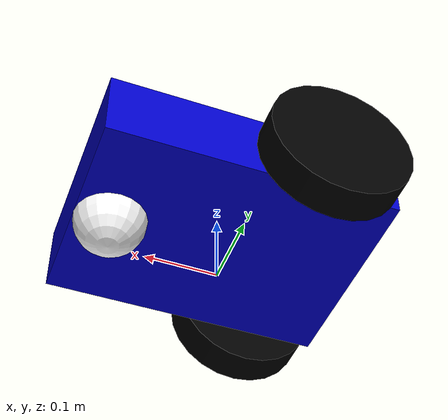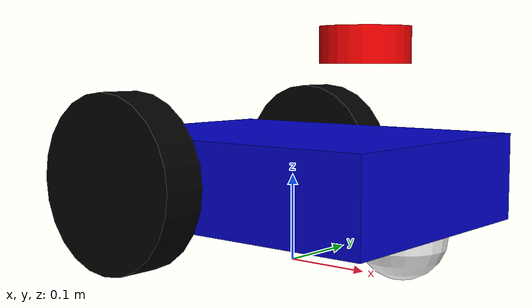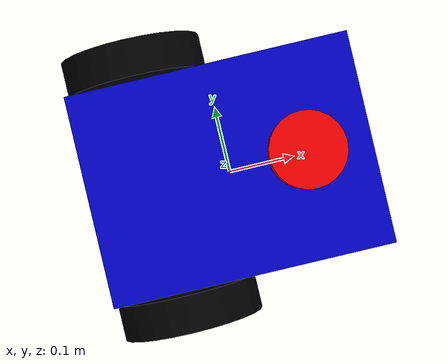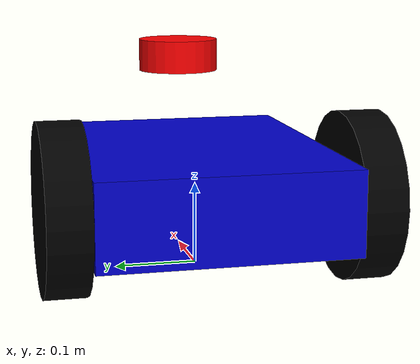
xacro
<?xml version="1.0"?>
<robot name="my_mobile_robot" xmlns:xacro="http://www.ros.org/wiki/xacro">

  <material name="blue"><color rgba="0 0 0.8 1"/></material>
  <material name="black"><color rgba="0 0 0 1"/></material>
  <material name="white"><color rgba="1 1 1 1"/></material>
  <material name="red"><color rgba="1 0 0 1"/></material> <link name="base_footprint"/>

  <joint name="base_joint" type="fixed">
    <parent link="base_footprint"/>
    <child link="base_link"/>
    <origin xyz="0 0 0.1"/>
  </joint>

  <link name="base_link">
    <visual>
      <geometry><box size="0.4 0.3 0.1"/></geometry>
      <material name="blue"/>
    </visual>
    <collision>
      <geometry><box size="0.4 0.3 0.1"/></geometry>
    </collision>
    <inertial>
      <mass value="5.0"/>
      <inertia ixx="0.1" ixy="0" ixz="0" iyy="0.1" iyz="0" izz="0.1"/>
    </inertial>
  </link>

  <link name="left_wheel">
    <visual>
      <geometry><cylinder radius="0.1" length="0.05"/></geometry>
      <material name="black"/>
    </visual>
    <collision>
      <geometry><cylinder radius="0.1" length="0.05"/></geometry>
    </collision>
    <inertial>
      <mass value="1.0"/>
      <inertia ixx="0.1" ixy="0" ixz="0" iyy="0.1" iyz="0" izz="0.1"/>
    </inertial>
  </link>

  <joint name="left_wheel_joint" type="continuous">
    <parent link="base_link"/>
    <child link="left_wheel"/>
    <origin xyz="-0.1 0.175 0" rpy="-1.5708 0 0"/>
    <axis xyz="0 0 1"/>
  </joint>

  <link name="right_wheel">
    <visual>
      <geometry><cylinder radius="0.1" length="0.05"/></geometry>
      <material name="black"/>
    </visual>
    <collision>
      <geometry><cylinder radius="0.1" length="0.05"/></geometry>
    </collision>
    <inertial>
      <mass value="1.0"/>
      <inertia ixx="0.1" ixy="0" ixz="0" iyy="0.1" iyz="0" izz="0.1"/>
    </inertial>
  </link>

  <joint name="right_wheel_joint" type="continuous">
    <parent link="base_link"/>
    <child link="right_wheel"/>
    <origin xyz="-0.1 -0.175 0" rpy="-1.5708 0 0"/>
    <axis xyz="0 0 1"/>
  </joint>

  <link name="caster_wheel">
    <visual>
      <geometry><sphere radius="0.05"/></geometry>
      <material name="white"/>
    </visual>
    <collision>
      <geometry><sphere radius="0.05"/></geometry>
    </collision>
    <inertial>
      <mass value="0.5"/>
      <inertia ixx="0.01" ixy="0" ixz="0" iyy="0.01" iyz="0" izz="0.01"/>
    </inertial>
  </link>

  <joint name="caster_joint" type="fixed">
    <parent link="base_link"/>
    <child link="caster_wheel"/>
    <origin xyz="0.15 0 -0.05"/>
  </joint>

  <link name="lidar_link">
    <visual>
      <geometry><cylinder radius="0.05" length="0.04"/></geometry>
      <material name="red"/>
    </visual>
    <collision>
      <geometry><cylinder radius="0.05" length="0.04"/></geometry>
    </collision>
    <inertial>
      <mass value="0.1"/>
      <inertia ixx="0.001" ixy="0" ixz="0" iyy="0.001" iyz="0" izz="0.001"/>
    </inertial>
  </link>

  <joint name="lidar_joint" type="fixed">
    <parent link="base_link"/>
    <child link="lidar_link"/>
    <origin xyz="0.1 0 0.15"/> </joint>

  <gazebo reference="caster_wheel">
    <material>Gazebo/White</material>
    <mu1>0.001</mu1>
    <mu2>0.001</mu2>
  </gazebo>

  <gazebo reference="left_wheel">
    <material>Gazebo/Black</material>
    <mu1>10.0</mu1>
    <mu2>10.0</mu2>
  </gazebo>

  <gazebo reference="right_wheel">
    <material>Gazebo/Black</material>
    <mu1>10.0</mu1>
    <mu2>10.0</mu2>
  </gazebo>

  <gazebo reference="base_link">
    <material>Gazebo/Blue</material>
  </gazebo>

  <gazebo reference="lidar_link">
    <material>Gazebo/Red</material>
  </gazebo>

  <gazebo>
    <plugin name="diff_drive" filename="libgazebo_ros_diff_drive.so">
<max_wheel_torque>20</max_wheel_torque>
      <max_wheel_acceleration>1.0</max_wheel_acceleration>

      <left_joint>left_wheel_joint</left_joint>
      <right_joint>right_wheel_joint</right_joint>
      <wheel_separation>0.35</wheel_separation>
      <wheel_diameter>0.2</wheel_diameter>
      <command_topic>cmd_vel</command_topic>
      <publish_odom>true</publish_odom>
      <publish_odom_tf>true</publish_odom_tf>
      <publish_wheel_tf>true</publish_wheel_tf>
      <robot_base_frame>base_footprint</robot_base_frame>
    </plugin>

    <plugin name="gazebo_ros_joint_state_publisher" filename="libgazebo_ros_joint_state_publisher.so">
      <update_rate>50</update_rate>
      <joint_name>left_wheel_joint</joint_name>
      <joint_name>right_wheel_joint</joint_name>
    </plugin>
  </gazebo>

  <gazebo reference="lidar_link">
    <sensor name="lidar" type="ray">
      <always_on>true</always_on>
      <visualize>true</visualize> <update_rate>10</update_rate>
      <ray>
        <scan>
          <horizontal>
            <samples>360</samples>
            <resolution>1.000000</resolution>
            <min_angle>0.000000</min_angle>
            <max_angle>6.280000</max_angle>
          </horizontal>
        </scan>
        <range>
          <min>0.120000</min>
          <max>3.5</max>
          <resolution>0.015000</resolution>
        </range>
        <noise>
          <type>gaussian</type>
          <mean>0.0</mean>
          <stddev>0.01</stddev>
        </noise>
      </ray>
      <plugin name="scan" filename="libgazebo_ros_ray_sensor.so">
        <ros>
          <remapping>~/out:=scan</remapping>
        </ros>
        <output_type>sensor_msgs/LaserScan</output_type>
        <frame_name>lidar_link</frame_name>
      </plugin>
    </sensor>
  </gazebo>

</robot>
